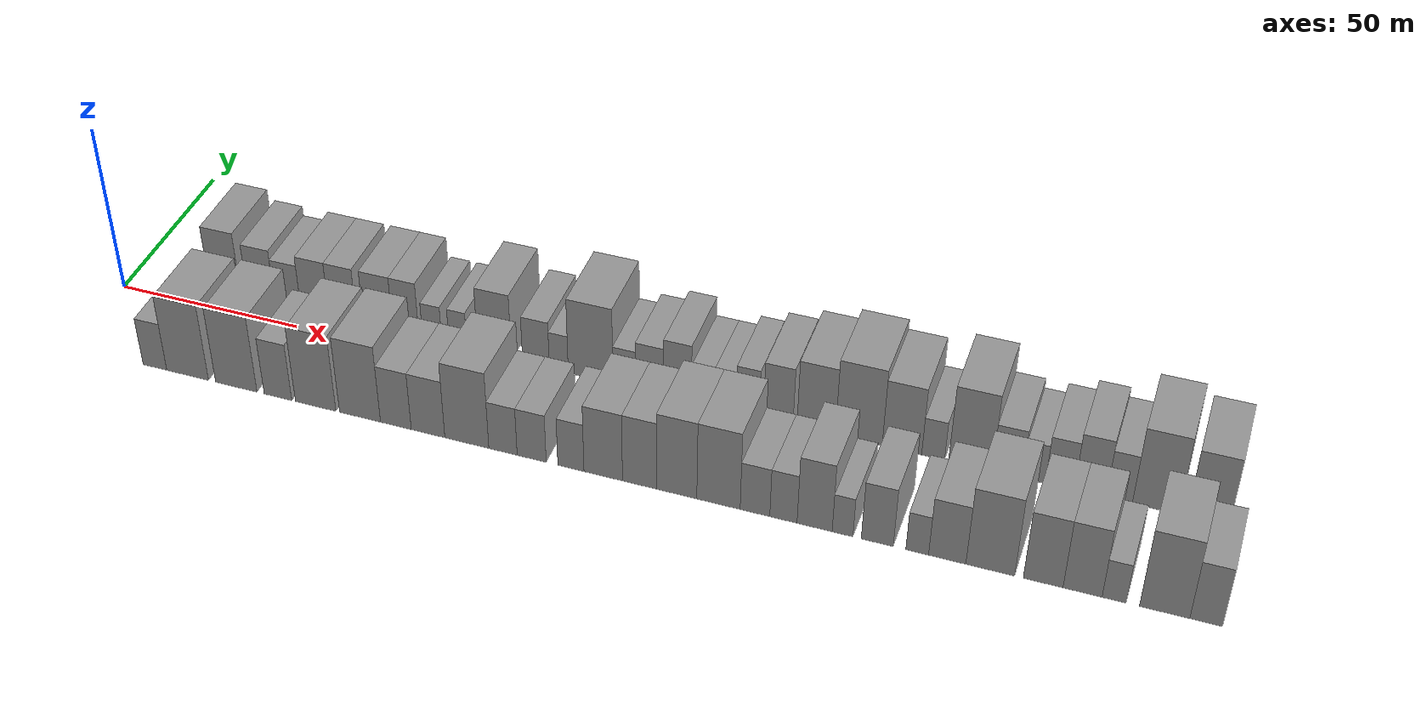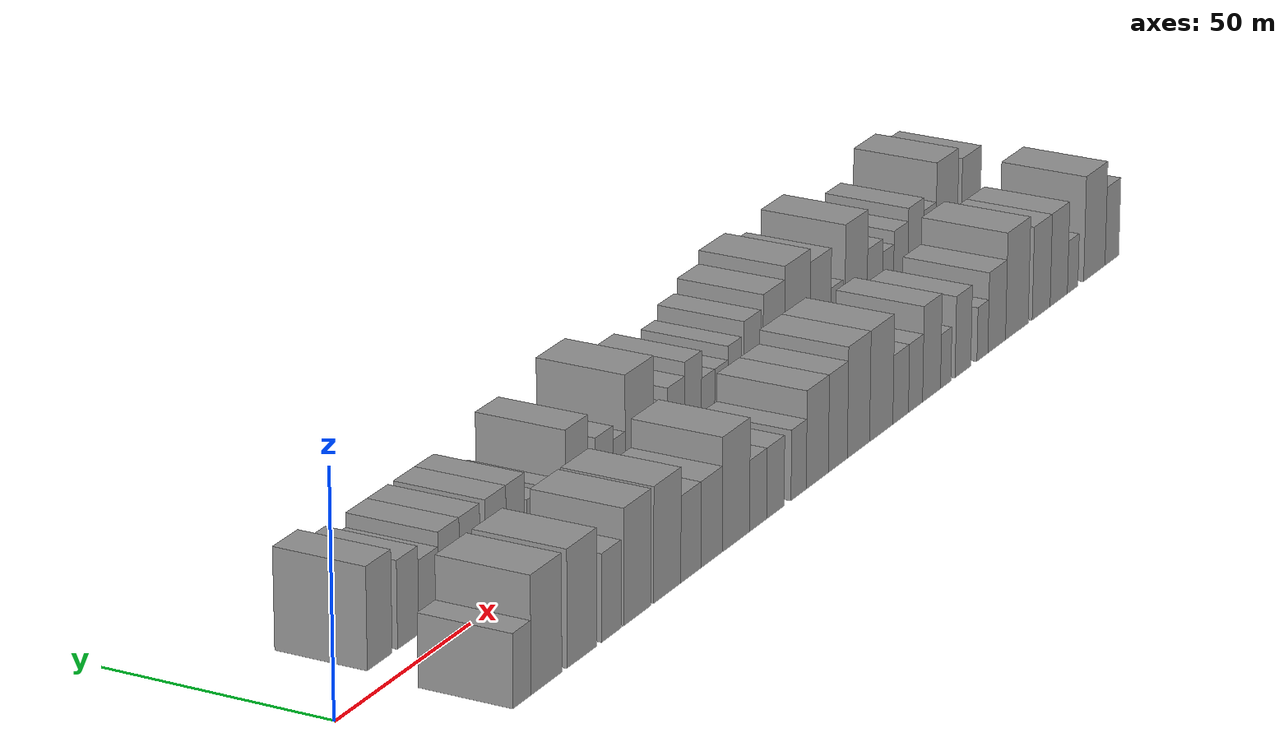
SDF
<sdf version="1.6">
 <world name="default">
  <scene>
   <sky><clouds><speed>12</speed></clouds></sky>
   <ambient>0.4 0.4 0.4 1</ambient>
   <background>0.7 0.7 0.7 1</background>
   <shadows>1</shadows>
  </scene>
  <gravity>0 0 -9.8066</gravity>
  <magnetic_field>6e-06 2.3e-05 -4.2e-05</magnetic_field>
  <physics default="0" name="default_physics" type="ode">
   <ode>
    <solver>
     <type>quick</type>
     <iters>10</iters>
     <sor>1.0</sor>
     <use_dynamic_moi_rescaling>0</use_dynamic_moi_rescaling>
    </solver>
    <constraints>
     <cfm>0</cfm>
     <erp>0.2</erp>
     <contact_max_correcting_vel>100</contact_max_correcting_vel>
     <contact_surface_layer>0.001</contact_surface_layer>
    </constraints>
   </ode>
   <max_step_size>0.004</max_step_size>
   <real_time_factor>1</real_time_factor>
   <real_time_update_rate>250</real_time_update_rate>
  </physics>
  <light name="sun" type="directional">
   <pose>0 0 10 0 0 0</pose>
   <diffuse>0.8 0.8 0.8 1</diffuse>
   <specular>0.2 0.2 0.2 1</specular>
   <attenuation>
    <range>1000</range>
    <constant>0.9</constant>
    <linear>0.01</linear>
    <quadratic>0.001</quadratic>
   </attenuation>
   <direction>-0.5 0.1 -0.9</direction>
  </light>
  <model name="building_1">
   <static>1</static>
   <pose>26.5547 16.0000 0 0.000000 0.000000 1.570796</pose>
   <link name="link">
    <pose>0 0 10.50 0 0 0</pose>
    <collision name="collision"><geometry><box><size>20.0000 9.1093 21.0000</size></box></geometry></collision>
    <visual name="visual">
     <cast_shadows>0</cast_shadows>
     <geometry><box><size>20.0000 9.1093 21.0000</size></box></geometry>
     <material>
      <script>
       <uri>model://grey_wall/materials/scripts</uri>
       <uri>model://grey_wall/materials/textures</uri>
       <name>vrc/grey_wall</name>
      </script>
     </material>
    </visual>
   </link>
  </model>
  <model name="building_2">
   <static>1</static>
   <pose>37.0509 16.0000 0 0.000000 0.000000 1.570796</pose>
   <link name="link">
    <pose>0 0 9.00 0 0 0</pose>
    <collision name="collision"><geometry><box><size>20.0000 7.8831 18.0000</size></box></geometry></collision>
    <visual name="visual">
     <cast_shadows>0</cast_shadows>
     <geometry><box><size>20.0000 7.8831 18.0000</size></box></geometry>
     <material>
      <script>
       <uri>model://grey_wall/materials/scripts</uri>
       <uri>model://grey_wall/materials/textures</uri>
       <name>vrc/grey_wall</name>
      </script>
     </material>
    </visual>
   </link>
  </model>
  <model name="building_3">
   <static>1</static>
   <pose>44.7225 16.0000 0 0.000000 0.000000 1.570796</pose>
   <link name="link">
    <pose>0 0 7.50 0 0 0</pose>
    <collision name="collision"><geometry><box><size>20.0000 7.4601 15.0000</size></box></geometry></collision>
    <visual name="visual">
     <cast_shadows>0</cast_shadows>
     <geometry><box><size>20.0000 7.4601 15.0000</size></box></geometry>
     <material>
      <script>
       <uri>model://grey_wall/materials/scripts</uri>
       <uri>model://grey_wall/materials/textures</uri>
       <name>vrc/grey_wall</name>
      </script>
     </material>
    </visual>
   </link>
  </model>
  <model name="building_4">
   <static>1</static>
   <pose>52.4734 16.0000 0 0.000000 0.000000 1.570796</pose>
   <link name="link">
    <pose>0 0 9.00 0 0 0</pose>
    <collision name="collision"><geometry><box><size>20.0000 8.0417 18.0000</size></box></geometry></collision>
    <visual name="visual">
     <cast_shadows>0</cast_shadows>
     <geometry><box><size>20.0000 8.0417 18.0000</size></box></geometry>
     <material>
      <script>
       <uri>model://grey_wall/materials/scripts</uri>
       <uri>model://grey_wall/materials/textures</uri>
       <name>vrc/grey_wall</name>
      </script>
     </material>
    </visual>
   </link>
  </model>
  <model name="building_5">
   <static>1</static>
   <pose>60.4137 16.0000 0 0.000000 0.000000 1.570796</pose>
   <link name="link">
    <pose>0 0 9.00 0 0 0</pose>
    <collision name="collision"><geometry><box><size>20.0000 7.8390 18.0000</size></box></geometry></collision>
    <visual name="visual">
     <cast_shadows>0</cast_shadows>
     <geometry><box><size>20.0000 7.8390 18.0000</size></box></geometry>
     <material>
      <script>
       <uri>model://grey_wall/materials/scripts</uri>
       <uri>model://grey_wall/materials/textures</uri>
       <name>vrc/grey_wall</name>
      </script>
     </material>
    </visual>
   </link>
  </model>
  <model name="building_6">
   <static>1</static>
   <pose>70.4229 16.0000 0 0.000000 0.000000 1.570796</pose>
   <link name="link">
    <pose>0 0 9.00 0 0 0</pose>
    <collision name="collision"><geometry><box><size>20.0000 8.1794 18.0000</size></box></geometry></collision>
    <visual name="visual">
     <cast_shadows>0</cast_shadows>
     <geometry><box><size>20.0000 8.1794 18.0000</size></box></geometry>
     <material>
      <script>
       <uri>model://grey_wall/materials/scripts</uri>
       <uri>model://grey_wall/materials/textures</uri>
       <name>vrc/grey_wall</name>
      </script>
     </material>
    </visual>
   </link>
  </model>
  <model name="building_7">
   <static>1</static>
   <pose>78.1544 16.0000 0 0.000000 0.000000 1.570796</pose>
   <link name="link">
    <pose>0 0 9.00 0 0 0</pose>
    <collision name="collision"><geometry><box><size>20.0000 7.2836 18.0000</size></box></geometry></collision>
    <visual name="visual">
     <cast_shadows>0</cast_shadows>
     <geometry><box><size>20.0000 7.2836 18.0000</size></box></geometry>
     <material>
      <script>
       <uri>model://grey_wall/materials/scripts</uri>
       <uri>model://grey_wall/materials/textures</uri>
       <name>vrc/grey_wall</name>
      </script>
     </material>
    </visual>
   </link>
  </model>
  <model name="building_8">
   <static>1</static>
   <pose>85.4545 16.0000 0 0.000000 0.000000 1.570796</pose>
   <link name="link">
    <pose>0 0 6.00 0 0 0</pose>
    <collision name="collision"><geometry><box><size>20.0000 5.3167 12.0000</size></box></geometry></collision>
    <visual name="visual">
     <cast_shadows>0</cast_shadows>
     <geometry><box><size>20.0000 5.3167 12.0000</size></box></geometry>
     <material>
      <script>
       <uri>model://grey_wall/materials/scripts</uri>
       <uri>model://grey_wall/materials/textures</uri>
       <name>vrc/grey_wall</name>
      </script>
     </material>
    </visual>
   </link>
  </model>
  <model name="building_9">
   <static>1</static>
   <pose>92.5778 16.0000 0 0.000000 0.000000 1.570796</pose>
   <link name="link">
    <pose>0 0 6.00 0 0 0</pose>
    <collision name="collision"><geometry><box><size>20.0000 4.9298 12.0000</size></box></geometry></collision>
    <visual name="visual">
     <cast_shadows>0</cast_shadows>
     <geometry><box><size>20.0000 4.9298 12.0000</size></box></geometry>
     <material>
      <script>
       <uri>model://grey_wall/materials/scripts</uri>
       <uri>model://grey_wall/materials/textures</uri>
       <name>vrc/grey_wall</name>
      </script>
     </material>
    </visual>
   </link>
  </model>
  <model name="building_10">
   <static>1</static>
   <pose>102.6408 16.0000 0 0.000000 0.000000 1.570796</pose>
   <link name="link">
    <pose>0 0 10.50 0 0 0</pose>
    <collision name="collision"><geometry><box><size>20.0000 9.1963 21.0000</size></box></geometry></collision>
    <visual name="visual">
     <cast_shadows>0</cast_shadows>
     <geometry><box><size>20.0000 9.1963 21.0000</size></box></geometry>
     <material>
      <script>
       <uri>model://grey_wall/materials/scripts</uri>
       <uri>model://grey_wall/materials/textures</uri>
       <name>vrc/grey_wall</name>
      </script>
     </material>
    </visual>
   </link>
  </model>
  <model name="building_11">
   <static>1</static>
   <pose>113.8537 16.0000 0 0.000000 0.000000 1.570796</pose>
   <link name="link">
    <pose>0 0 7.50 0 0 0</pose>
    <collision name="collision"><geometry><box><size>20.0000 7.2295 15.0000</size></box></geometry></collision>
    <visual name="visual">
     <cast_shadows>0</cast_shadows>
     <geometry><box><size>20.0000 7.2295 15.0000</size></box></geometry>
     <material>
      <script>
       <uri>model://grey_wall/materials/scripts</uri>
       <uri>model://grey_wall/materials/textures</uri>
       <name>vrc/grey_wall</name>
      </script>
     </material>
    </visual>
   </link>
  </model>
  <model name="building_12">
   <static>1</static>
   <pose>120.0079 16.0000 0 0.000000 0.000000 1.570796</pose>
   <link name="link">
    <pose>0 0 6.00 0 0 0</pose>
    <collision name="collision"><geometry><box><size>20.0000 5.0787 12.0000</size></box></geometry></collision>
    <visual name="visual">
     <cast_shadows>0</cast_shadows>
     <geometry><box><size>20.0000 5.0787 12.0000</size></box></geometry>
     <material>
      <script>
       <uri>model://grey_wall/materials/scripts</uri>
       <uri>model://grey_wall/materials/textures</uri>
       <name>vrc/grey_wall</name>
      </script>
     </material>
    </visual>
   </link>
  </model>
  <model name="building_13">
   <static>1</static>
   <pose>128.5151 16.0000 0 0.000000 0.000000 1.570796</pose>
   <link name="link">
    <pose>0 0 12.00 0 0 0</pose>
    <collision name="collision"><geometry><box><size>20.0000 11.9358 24.0000</size></box></geometry></collision>
    <visual name="visual">
     <cast_shadows>0</cast_shadows>
     <geometry><box><size>20.0000 11.9358 24.0000</size></box></geometry>
     <material>
      <script>
       <uri>model://grey_wall/materials/scripts</uri>
       <uri>model://grey_wall/materials/textures</uri>
       <name>vrc/grey_wall</name>
      </script>
     </material>
    </visual>
   </link>
  </model>
  <model name="building_14">
   <static>1</static>
   <pose>137.4655 16.0000 0 0.000000 0.000000 1.570796</pose>
   <link name="link">
    <pose>0 0 6.00 0 0 0</pose>
    <collision name="collision"><geometry><box><size>20.0000 5.9648 12.0000</size></box></geometry></collision>
    <visual name="visual">
     <cast_shadows>0</cast_shadows>
     <geometry><box><size>20.0000 5.9648 12.0000</size></box></geometry>
     <material>
      <script>
       <uri>model://grey_wall/materials/scripts</uri>
       <uri>model://grey_wall/materials/textures</uri>
       <name>vrc/grey_wall</name>
      </script>
     </material>
    </visual>
   </link>
  </model>
  <model name="building_15">
   <static>1</static>
   <pose>144.1425 16.0000 0 0.000000 0.000000 1.570796</pose>
   <link name="link">
    <pose>0 0 7.50 0 0 0</pose>
    <collision name="collision"><geometry><box><size>20.0000 7.3892 15.0000</size></box></geometry></collision>
    <visual name="visual">
     <cast_shadows>0</cast_shadows>
     <geometry><box><size>20.0000 7.3892 15.0000</size></box></geometry>
     <material>
      <script>
       <uri>model://grey_wall/materials/scripts</uri>
       <uri>model://grey_wall/materials/textures</uri>
       <name>vrc/grey_wall</name>
      </script>
     </material>
    </visual>
   </link>
  </model>
  <model name="building_16">
   <static>1</static>
   <pose>151.4685 16.0000 0 0.000000 0.000000 1.570796</pose>
   <link name="link">
    <pose>0 0 9.00 0 0 0</pose>
    <collision name="collision"><geometry><box><size>20.0000 7.2628 18.0000</size></box></geometry></collision>
    <visual name="visual">
     <cast_shadows>0</cast_shadows>
     <geometry><box><size>20.0000 7.2628 18.0000</size></box></geometry>
     <material>
      <script>
       <uri>model://grey_wall/materials/scripts</uri>
       <uri>model://grey_wall/materials/textures</uri>
       <name>vrc/grey_wall</name>
      </script>
     </material>
    </visual>
   </link>
  </model>
  <model name="building_17">
   <static>1</static>
   <pose>158.0082 16.0000 0 0.000000 0.000000 1.570796</pose>
   <link name="link">
    <pose>0 0 6.00 0 0 0</pose>
    <collision name="collision"><geometry><box><size>20.0000 5.8166 12.0000</size></box></geometry></collision>
    <visual name="visual">
     <cast_shadows>0</cast_shadows>
     <geometry><box><size>20.0000 5.8166 12.0000</size></box></geometry>
     <material>
      <script>
       <uri>model://grey_wall/materials/scripts</uri>
       <uri>model://grey_wall/materials/textures</uri>
       <name>vrc/grey_wall</name>
      </script>
     </material>
    </visual>
   </link>
  </model>
  <model name="building_18">
   <static>1</static>
   <pose>163.7879 16.0000 0 0.000000 0.000000 1.570796</pose>
   <link name="link">
    <pose>0 0 6.00 0 0 0</pose>
    <collision name="collision"><geometry><box><size>20.0000 5.7429 12.0000</size></box></geometry></collision>
    <visual name="visual">
     <cast_shadows>0</cast_shadows>
     <geometry><box><size>20.0000 5.7429 12.0000</size></box></geometry>
     <material>
      <script>
       <uri>model://grey_wall/materials/scripts</uri>
       <uri>model://grey_wall/materials/textures</uri>
       <name>vrc/grey_wall</name>
      </script>
     </material>
    </visual>
   </link>
  </model>
  <model name="building_19">
   <static>1</static>
   <pose>169.6911 16.0000 0 0.000000 0.000000 1.570796</pose>
   <link name="link">
    <pose>0 0 7.50 0 0 0</pose>
    <collision name="collision"><geometry><box><size>20.0000 6.0635 15.0000</size></box></geometry></collision>
    <visual name="visual">
     <cast_shadows>0</cast_shadows>
     <geometry><box><size>20.0000 6.0635 15.0000</size></box></geometry>
     <material>
      <script>
       <uri>model://grey_wall/materials/scripts</uri>
       <uri>model://grey_wall/materials/textures</uri>
       <name>vrc/grey_wall</name>
      </script>
     </material>
    </visual>
   </link>
  </model>
  <model name="building_20">
   <static>1</static>
   <pose>177.5209 16.0000 0 0.000000 0.000000 1.570796</pose>
   <link name="link">
    <pose>0 0 9.00 0 0 0</pose>
    <collision name="collision"><geometry><box><size>20.0000 7.5960 18.0000</size></box></geometry></collision>
    <visual name="visual">
     <cast_shadows>0</cast_shadows>
     <geometry><box><size>20.0000 7.5960 18.0000</size></box></geometry>
     <material>
      <script>
       <uri>model://grey_wall/materials/scripts</uri>
       <uri>model://grey_wall/materials/textures</uri>
       <name>vrc/grey_wall</name>
      </script>
     </material>
    </visual>
   </link>
  </model>
  <model name="building_21">
   <static>1</static>
   <pose>187.1836 16.0000 0 0.000000 0.000000 1.570796</pose>
   <link name="link">
    <pose>0 0 10.50 0 0 0</pose>
    <collision name="collision"><geometry><box><size>20.0000 9.7294 21.0000</size></box></geometry></collision>
    <visual name="visual">
     <cast_shadows>0</cast_shadows>
     <geometry><box><size>20.0000 9.7294 21.0000</size></box></geometry>
     <material>
      <script>
       <uri>model://grey_wall/materials/scripts</uri>
       <uri>model://grey_wall/materials/textures</uri>
       <name>vrc/grey_wall</name>
      </script>
     </material>
    </visual>
   </link>
  </model>
  <model name="building_22">
   <static>1</static>
   <pose>197.9205 16.0000 0 0.000000 0.000000 1.570796</pose>
   <link name="link">
    <pose>0 0 12.00 0 0 0</pose>
    <collision name="collision"><geometry><box><size>20.0000 11.7444 24.0000</size></box></geometry></collision>
    <visual name="visual">
     <cast_shadows>0</cast_shadows>
     <geometry><box><size>20.0000 11.7444 24.0000</size></box></geometry>
     <material>
      <script>
       <uri>model://grey_wall/materials/scripts</uri>
       <uri>model://grey_wall/materials/textures</uri>
       <name>vrc/grey_wall</name>
      </script>
     </material>
    </visual>
   </link>
  </model>
  <model name="building_23">
   <static>1</static>
   <pose>208.6838 16.0000 0 0.000000 0.000000 1.570796</pose>
   <link name="link">
    <pose>0 0 10.50 0 0 0</pose>
    <collision name="collision"><geometry><box><size>20.0000 9.7822 21.0000</size></box></geometry></collision>
    <visual name="visual">
     <cast_shadows>0</cast_shadows>
     <geometry><box><size>20.0000 9.7822 21.0000</size></box></geometry>
     <material>
      <script>
       <uri>model://grey_wall/materials/scripts</uri>
       <uri>model://grey_wall/materials/textures</uri>
       <name>vrc/grey_wall</name>
      </script>
     </material>
    </visual>
   </link>
  </model>
  <model name="building_24">
   <static>1</static>
   <pose>216.3989 16.0000 0 0.000000 0.000000 1.570796</pose>
   <link name="link">
    <pose>0 0 6.00 0 0 0</pose>
    <collision name="collision"><geometry><box><size>20.0000 5.6480 12.0000</size></box></geometry></collision>
    <visual name="visual">
     <cast_shadows>0</cast_shadows>
     <geometry><box><size>20.0000 5.6480 12.0000</size></box></geometry>
     <material>
      <script>
       <uri>model://grey_wall/materials/scripts</uri>
       <uri>model://grey_wall/materials/textures</uri>
       <name>vrc/grey_wall</name>
      </script>
     </material>
    </visual>
   </link>
  </model>
  <model name="building_25">
   <static>1</static>
   <pose>225.5383 16.0000 0 0.000000 0.000000 1.570796</pose>
   <link name="link">
    <pose>0 0 12.00 0 0 0</pose>
    <collision name="collision"><geometry><box><size>20.0000 10.6308 24.0000</size></box></geometry></collision>
    <visual name="visual">
     <cast_shadows>0</cast_shadows>
     <geometry><box><size>20.0000 10.6308 24.0000</size></box></geometry>
     <material>
      <script>
       <uri>model://grey_wall/materials/scripts</uri>
       <uri>model://grey_wall/materials/textures</uri>
       <name>vrc/grey_wall</name>
      </script>
     </material>
    </visual>
   </link>
  </model>
  <model name="building_26">
   <static>1</static>
   <pose>234.5276 16.0000 0 0.000000 0.000000 1.570796</pose>
   <link name="link">
    <pose>0 0 7.50 0 0 0</pose>
    <collision name="collision"><geometry><box><size>20.0000 7.3479 15.0000</size></box></geometry></collision>
    <visual name="visual">
     <cast_shadows>0</cast_shadows>
     <geometry><box><size>20.0000 7.3479 15.0000</size></box></geometry>
     <material>
      <script>
       <uri>model://grey_wall/materials/scripts</uri>
       <uri>model://grey_wall/materials/textures</uri>
       <name>vrc/grey_wall</name>
      </script>
     </material>
    </visual>
   </link>
  </model>
  <model name="building_27">
   <static>1</static>
   <pose>240.9351 16.0000 0 0.000000 0.000000 1.570796</pose>
   <link name="link">
    <pose>0 0 6.00 0 0 0</pose>
    <collision name="collision"><geometry><box><size>20.0000 5.4671 12.0000</size></box></geometry></collision>
    <visual name="visual">
     <cast_shadows>0</cast_shadows>
     <geometry><box><size>20.0000 5.4671 12.0000</size></box></geometry>
     <material>
      <script>
       <uri>model://grey_wall/materials/scripts</uri>
       <uri>model://grey_wall/materials/textures</uri>
       <name>vrc/grey_wall</name>
      </script>
     </material>
    </visual>
   </link>
  </model>
  <model name="building_28">
   <static>1</static>
   <pose>247.1524 16.0000 0 0.000000 0.000000 1.570796</pose>
   <link name="link">
    <pose>0 0 7.50 0 0 0</pose>
    <collision name="collision"><geometry><box><size>20.0000 6.9674 15.0000</size></box></geometry></collision>
    <visual name="visual">
     <cast_shadows>0</cast_shadows>
     <geometry><box><size>20.0000 6.9674 15.0000</size></box></geometry>
     <material>
      <script>
       <uri>model://grey_wall/materials/scripts</uri>
       <uri>model://grey_wall/materials/textures</uri>
       <name>vrc/grey_wall</name>
      </script>
     </material>
    </visual>
   </link>
  </model>
  <model name="building_29">
   <static>1</static>
   <pose>254.4423 16.0000 0 0.000000 0.000000 1.570796</pose>
   <link name="link">
    <pose>0 0 9.00 0 0 0</pose>
    <collision name="collision"><geometry><box><size>20.0000 7.6125 18.0000</size></box></geometry></collision>
    <visual name="visual">
     <cast_shadows>0</cast_shadows>
     <geometry><box><size>20.0000 7.6125 18.0000</size></box></geometry>
     <material>
      <script>
       <uri>model://grey_wall/materials/scripts</uri>
       <uri>model://grey_wall/materials/textures</uri>
       <name>vrc/grey_wall</name>
      </script>
     </material>
    </visual>
   </link>
  </model>
  <model name="building_30">
   <static>1</static>
   <pose>261.3294 16.0000 0 0.000000 0.000000 1.570796</pose>
   <link name="link">
    <pose>0 0 7.50 0 0 0</pose>
    <collision name="collision"><geometry><box><size>20.0000 6.1617 15.0000</size></box></geometry></collision>
    <visual name="visual">
     <cast_shadows>0</cast_shadows>
     <geometry><box><size>20.0000 6.1617 15.0000</size></box></geometry>
     <material>
      <script>
       <uri>model://grey_wall/materials/scripts</uri>
       <uri>model://grey_wall/materials/textures</uri>
       <name>vrc/grey_wall</name>
      </script>
     </material>
    </visual>
   </link>
  </model>
  <model name="building_31">
   <static>1</static>
   <pose>269.8403 16.0000 0 0.000000 0.000000 1.570796</pose>
   <link name="link">
    <pose>0 0 12.00 0 0 0</pose>
    <collision name="collision"><geometry><box><size>20.0000 10.8602 24.0000</size></box></geometry></collision>
    <visual name="visual">
     <cast_shadows>0</cast_shadows>
     <geometry><box><size>20.0000 10.8602 24.0000</size></box></geometry>
     <material>
      <script>
       <uri>model://grey_wall/materials/scripts</uri>
       <uri>model://grey_wall/materials/textures</uri>
       <name>vrc/grey_wall</name>
      </script>
     </material>
    </visual>
   </link>
  </model>
  <model name="building_32">
   <static>1</static>
   <pose>282.1423 16.0000 0 0.000000 0.000000 1.570796</pose>
   <link name="link">
    <pose>0 0 10.50 0 0 0</pose>
    <collision name="collision"><geometry><box><size>20.0000 9.7439 21.0000</size></box></geometry></collision>
    <visual name="visual">
     <cast_shadows>0</cast_shadows>
     <geometry><box><size>20.0000 9.7439 21.0000</size></box></geometry>
     <material>
      <script>
       <uri>model://grey_wall/materials/scripts</uri>
       <uri>model://grey_wall/materials/textures</uri>
       <name>vrc/grey_wall</name>
      </script>
     </material>
    </visual>
   </link>
  </model>
  <model name="building_33">
   <static>1</static>
   <pose>23.3494 -16.0000 0 0.000000 0.000000 1.570796</pose>
   <link name="link">
    <pose>0 0 7.50 0 0 0</pose>
    <collision name="collision"><geometry><box><size>20.0000 6.6989 15.0000</size></box></geometry></collision>
    <visual name="visual">
     <cast_shadows>0</cast_shadows>
     <geometry><box><size>20.0000 6.6989 15.0000</size></box></geometry>
     <material>
      <script>
       <uri>model://grey_wall/materials/scripts</uri>
       <uri>model://grey_wall/materials/textures</uri>
       <name>vrc/grey_wall</name>
      </script>
     </material>
    </visual>
   </link>
  </model>
  <model name="building_34">
   <static>1</static>
   <pose>32.5683 -16.0000 0 0.000000 0.000000 1.570796</pose>
   <link name="link">
    <pose>0 0 12.00 0 0 0</pose>
    <collision name="collision"><geometry><box><size>20.0000 11.7388 24.0000</size></box></geometry></collision>
    <visual name="visual">
     <cast_shadows>0</cast_shadows>
     <geometry><box><size>20.0000 11.7388 24.0000</size></box></geometry>
     <material>
      <script>
       <uri>model://grey_wall/materials/scripts</uri>
       <uri>model://grey_wall/materials/textures</uri>
       <name>vrc/grey_wall</name>
      </script>
     </material>
    </visual>
   </link>
  </model>
  <model name="building_35">
   <static>1</static>
   <pose>46.1824 -16.0000 0 0.000000 0.000000 1.570796</pose>
   <link name="link">
    <pose>0 0 12.00 0 0 0</pose>
    <collision name="collision"><geometry><box><size>20.0000 11.4893 24.0000</size></box></geometry></collision>
    <visual name="visual">
     <cast_shadows>0</cast_shadows>
     <geometry><box><size>20.0000 11.4893 24.0000</size></box></geometry>
     <material>
      <script>
       <uri>model://grey_wall/materials/scripts</uri>
       <uri>model://grey_wall/materials/textures</uri>
       <name>vrc/grey_wall</name>
      </script>
     </material>
    </visual>
   </link>
  </model>
  <model name="building_36">
   <static>1</static>
   <pose>57.7215 -16.0000 0 0.000000 0.000000 1.570796</pose>
   <link name="link">
    <pose>0 0 9.00 0 0 0</pose>
    <collision name="collision"><geometry><box><size>20.0000 7.5889 18.0000</size></box></geometry></collision>
    <visual name="visual">
     <cast_shadows>0</cast_shadows>
     <geometry><box><size>20.0000 7.5889 18.0000</size></box></geometry>
     <material>
      <script>
       <uri>model://grey_wall/materials/scripts</uri>
       <uri>model://grey_wall/materials/textures</uri>
       <name>vrc/grey_wall</name>
      </script>
     </material>
    </visual>
   </link>
  </model>
  <model name="building_37">
   <static>1</static>
   <pose>68.0185 -16.0000 0 0.000000 0.000000 1.570796</pose>
   <link name="link">
    <pose>0 0 12.00 0 0 0</pose>
    <collision name="collision"><geometry><box><size>20.0000 11.0053 24.0000</size></box></geometry></collision>
    <visual name="visual">
     <cast_shadows>0</cast_shadows>
     <geometry><box><size>20.0000 11.0053 24.0000</size></box></geometry>
     <material>
      <script>
       <uri>model://grey_wall/materials/scripts</uri>
       <uri>model://grey_wall/materials/textures</uri>
       <name>vrc/grey_wall</name>
      </script>
     </material>
    </visual>
   </link>
  </model>
  <model name="building_38">
   <static>1</static>
   <pose>80.0309 -16.0000 0 0.000000 0.000000 1.570796</pose>
   <link name="link">
    <pose>0 0 12.00 0 0 0</pose>
    <collision name="collision"><geometry><box><size>20.0000 11.0194 24.0000</size></box></geometry></collision>
    <visual name="visual">
     <cast_shadows>0</cast_shadows>
     <geometry><box><size>20.0000 11.0194 24.0000</size></box></geometry>
     <material>
      <script>
       <uri>model://grey_wall/materials/scripts</uri>
       <uri>model://grey_wall/materials/textures</uri>
       <name>vrc/grey_wall</name>
      </script>
     </material>
    </visual>
   </link>
  </model>
  <model name="building_39">
   <static>1</static>
   <pose>89.6526 -16.0000 0 0.000000 0.000000 1.570796</pose>
   <link name="link">
    <pose>0 0 9.00 0 0 0</pose>
    <collision name="collision"><geometry><box><size>20.0000 8.2241 18.0000</size></box></geometry></collision>
    <visual name="visual">
     <cast_shadows>0</cast_shadows>
     <geometry><box><size>20.0000 8.2241 18.0000</size></box></geometry>
     <material>
      <script>
       <uri>model://grey_wall/materials/scripts</uri>
       <uri>model://grey_wall/materials/textures</uri>
       <name>vrc/grey_wall</name>
      </script>
     </material>
    </visual>
   </link>
  </model>
  <model name="building_40">
   <static>1</static>
   <pose>98.2155 -16.0000 0 0.000000 0.000000 1.570796</pose>
   <link name="link">
    <pose>0 0 9.00 0 0 0</pose>
    <collision name="collision"><geometry><box><size>20.0000 8.9016 18.0000</size></box></geometry></collision>
    <visual name="visual">
     <cast_shadows>0</cast_shadows>
     <geometry><box><size>20.0000 8.9016 18.0000</size></box></geometry>
     <material>
      <script>
       <uri>model://grey_wall/materials/scripts</uri>
       <uri>model://grey_wall/materials/textures</uri>
       <name>vrc/grey_wall</name>
      </script>
     </material>
    </visual>
   </link>
  </model>
  <model name="building_41">
   <static>1</static>
   <pose>108.4386 -16.0000 0 0.000000 0.000000 1.570796</pose>
   <link name="link">
    <pose>0 0 12.00 0 0 0</pose>
    <collision name="collision"><geometry><box><size>20.0000 11.5446 24.0000</size></box></geometry></collision>
    <visual name="visual">
     <cast_shadows>0</cast_shadows>
     <geometry><box><size>20.0000 11.5446 24.0000</size></box></geometry>
     <material>
      <script>
       <uri>model://grey_wall/materials/scripts</uri>
       <uri>model://grey_wall/materials/textures</uri>
       <name>vrc/grey_wall</name>
      </script>
     </material>
    </visual>
   </link>
  </model>
  <model name="building_42">
   <static>1</static>
   <pose>117.8920 -16.0000 0 0.000000 0.000000 1.570796</pose>
   <link name="link">
    <pose>0 0 7.50 0 0 0</pose>
    <collision name="collision"><geometry><box><size>20.0000 7.3621 15.0000</size></box></geometry></collision>
    <visual name="visual">
     <cast_shadows>0</cast_shadows>
     <geometry><box><size>20.0000 7.3621 15.0000</size></box></geometry>
     <material>
      <script>
       <uri>model://grey_wall/materials/scripts</uri>
       <uri>model://grey_wall/materials/textures</uri>
       <name>vrc/grey_wall</name>
      </script>
     </material>
    </visual>
   </link>
  </model>
  <model name="building_43">
   <static>1</static>
   <pose>125.3190 -16.0000 0 0.000000 0.000000 1.570796</pose>
   <link name="link">
    <pose>0 0 7.50 0 0 0</pose>
    <collision name="collision"><geometry><box><size>20.0000 7.4920 15.0000</size></box></geometry></collision>
    <visual name="visual">
     <cast_shadows>0</cast_shadows>
     <geometry><box><size>20.0000 7.4920 15.0000</size></box></geometry>
     <material>
      <script>
       <uri>model://grey_wall/materials/scripts</uri>
       <uri>model://grey_wall/materials/textures</uri>
       <name>vrc/grey_wall</name>
      </script>
     </material>
    </visual>
   </link>
  </model>
  <model name="building_44">
   <static>1</static>
   <pose>135.4020 -16.0000 0 0.000000 0.000000 1.570796</pose>
   <link name="link">
    <pose>0 0 7.50 0 0 0</pose>
    <collision name="collision"><geometry><box><size>20.0000 6.6740 15.0000</size></box></geometry></collision>
    <visual name="visual">
     <cast_shadows>0</cast_shadows>
     <geometry><box><size>20.0000 6.6740 15.0000</size></box></geometry>
     <material>
      <script>
       <uri>model://grey_wall/materials/scripts</uri>
       <uri>model://grey_wall/materials/textures</uri>
       <name>vrc/grey_wall</name>
      </script>
     </material>
    </visual>
   </link>
  </model>
  <model name="building_45">
   <static>1</static>
   <pose>143.6251 -16.0000 0 0.000000 0.000000 1.570796</pose>
   <link name="link">
    <pose>0 0 10.50 0 0 0</pose>
    <collision name="collision"><geometry><box><size>20.0000 9.7723 21.0000</size></box></geometry></collision>
    <visual name="visual">
     <cast_shadows>0</cast_shadows>
     <geometry><box><size>20.0000 9.7723 21.0000</size></box></geometry>
     <material>
      <script>
       <uri>model://grey_wall/materials/scripts</uri>
       <uri>model://grey_wall/materials/textures</uri>
       <name>vrc/grey_wall</name>
      </script>
     </material>
    </visual>
   </link>
  </model>
  <model name="building_46">
   <static>1</static>
   <pose>152.7676 -16.0000 0 0.000000 0.000000 1.570796</pose>
   <link name="link">
    <pose>0 0 10.50 0 0 0</pose>
    <collision name="collision"><geometry><box><size>20.0000 8.5126 21.0000</size></box></geometry></collision>
    <visual name="visual">
     <cast_shadows>0</cast_shadows>
     <geometry><box><size>20.0000 8.5126 21.0000</size></box></geometry>
     <material>
      <script>
       <uri>model://grey_wall/materials/scripts</uri>
       <uri>model://grey_wall/materials/textures</uri>
       <name>vrc/grey_wall</name>
      </script>
     </material>
    </visual>
   </link>
  </model>
  <model name="building_47">
   <static>1</static>
   <pose>162.0728 -16.0000 0 0.000000 0.000000 1.570796</pose>
   <link name="link">
    <pose>0 0 12.00 0 0 0</pose>
    <collision name="collision"><geometry><box><size>20.0000 10.0980 24.0000</size></box></geometry></collision>
    <visual name="visual">
     <cast_shadows>0</cast_shadows>
     <geometry><box><size>20.0000 10.0980 24.0000</size></box></geometry>
     <material>
      <script>
       <uri>model://grey_wall/materials/scripts</uri>
       <uri>model://grey_wall/materials/textures</uri>
       <name>vrc/grey_wall</name>
      </script>
     </material>
    </visual>
   </link>
  </model>
  <model name="building_48">
   <static>1</static>
   <pose>172.4769 -16.0000 0 0.000000 0.000000 1.570796</pose>
   <link name="link">
    <pose>0 0 12.00 0 0 0</pose>
    <collision name="collision"><geometry><box><size>20.0000 10.7101 24.0000</size></box></geometry></collision>
    <visual name="visual">
     <cast_shadows>0</cast_shadows>
     <geometry><box><size>20.0000 10.7101 24.0000</size></box></geometry>
     <material>
      <script>
       <uri>model://grey_wall/materials/scripts</uri>
       <uri>model://grey_wall/materials/textures</uri>
       <name>vrc/grey_wall</name>
      </script>
     </material>
    </visual>
   </link>
  </model>
  <model name="building_49">
   <static>1</static>
   <pose>181.4621 -16.0000 0 0.000000 0.000000 1.570796</pose>
   <link name="link">
    <pose>0 0 7.50 0 0 0</pose>
    <collision name="collision"><geometry><box><size>20.0000 7.2603 15.0000</size></box></geometry></collision>
    <visual name="visual">
     <cast_shadows>0</cast_shadows>
     <geometry><box><size>20.0000 7.2603 15.0000</size></box></geometry>
     <material>
      <script>
       <uri>model://grey_wall/materials/scripts</uri>
       <uri>model://grey_wall/materials/textures</uri>
       <name>vrc/grey_wall</name>
      </script>
     </material>
    </visual>
   </link>
  </model>
  <model name="building_50">
   <static>1</static>
   <pose>188.4011 -16.0000 0 0.000000 0.000000 1.570796</pose>
   <link name="link">
    <pose>0 0 7.50 0 0 0</pose>
    <collision name="collision"><geometry><box><size>20.0000 6.6177 15.0000</size></box></geometry></collision>
    <visual name="visual">
     <cast_shadows>0</cast_shadows>
     <geometry><box><size>20.0000 6.6177 15.0000</size></box></geometry>
     <material>
      <script>
       <uri>model://grey_wall/materials/scripts</uri>
       <uri>model://grey_wall/materials/textures</uri>
       <name>vrc/grey_wall</name>
      </script>
     </material>
    </visual>
   </link>
  </model>
  <model name="building_51">
   <static>1</static>
   <pose>195.9518 -16.0000 0 0.000000 0.000000 1.570796</pose>
   <link name="link">
    <pose>0 0 10.50 0 0 0</pose>
    <collision name="collision"><geometry><box><size>20.0000 8.4837 21.0000</size></box></geometry></collision>
    <visual name="visual">
     <cast_shadows>0</cast_shadows>
     <geometry><box><size>20.0000 8.4837 21.0000</size></box></geometry>
     <material>
      <script>
       <uri>model://grey_wall/materials/scripts</uri>
       <uri>model://grey_wall/materials/textures</uri>
       <name>vrc/grey_wall</name>
      </script>
     </material>
    </visual>
   </link>
  </model>
  <model name="building_52">
   <static>1</static>
   <pose>202.6838 -16.0000 0 0.000000 0.000000 1.570796</pose>
   <link name="link">
    <pose>0 0 6.00 0 0 0</pose>
    <collision name="collision"><geometry><box><size>20.0000 4.9804 12.0000</size></box></geometry></collision>
    <visual name="visual">
     <cast_shadows>0</cast_shadows>
     <geometry><box><size>20.0000 4.9804 12.0000</size></box></geometry>
     <material>
      <script>
       <uri>model://grey_wall/materials/scripts</uri>
       <uri>model://grey_wall/materials/textures</uri>
       <name>vrc/grey_wall</name>
      </script>
     </material>
    </visual>
   </link>
  </model>
  <model name="building_53">
   <static>1</static>
   <pose>210.9725 -16.0000 0 0.000000 0.000000 1.570796</pose>
   <link name="link">
    <pose>0 0 9.00 0 0 0</pose>
    <collision name="collision"><geometry><box><size>20.0000 7.5971 18.0000</size></box></geometry></collision>
    <visual name="visual">
     <cast_shadows>0</cast_shadows>
     <geometry><box><size>20.0000 7.5971 18.0000</size></box></geometry>
     <material>
      <script>
       <uri>model://grey_wall/materials/scripts</uri>
       <uri>model://grey_wall/materials/textures</uri>
       <name>vrc/grey_wall</name>
      </script>
     </material>
    </visual>
   </link>
  </model>
  <model name="building_54">
   <static>1</static>
   <pose>220.4378 -16.0000 0 0.000000 0.000000 1.570796</pose>
   <link name="link">
    <pose>0 0 6.00 0 0 0</pose>
    <collision name="collision"><geometry><box><size>20.0000 5.3335 12.0000</size></box></geometry></collision>
    <visual name="visual">
     <cast_shadows>0</cast_shadows>
     <geometry><box><size>20.0000 5.3335 12.0000</size></box></geometry>
     <material>
      <script>
       <uri>model://grey_wall/materials/scripts</uri>
       <uri>model://grey_wall/materials/textures</uri>
       <name>vrc/grey_wall</name>
      </script>
     </material>
    </visual>
   </link>
  </model>
  <model name="building_55">
   <static>1</static>
   <pose>227.4697 -16.0000 0 0.000000 0.000000 1.570796</pose>
   <link name="link">
    <pose>0 0 9.00 0 0 0</pose>
    <collision name="collision"><geometry><box><size>20.0000 8.7302 18.0000</size></box></geometry></collision>
    <visual name="visual">
     <cast_shadows>0</cast_shadows>
     <geometry><box><size>20.0000 8.7302 18.0000</size></box></geometry>
     <material>
      <script>
       <uri>model://grey_wall/materials/scripts</uri>
       <uri>model://grey_wall/materials/textures</uri>
       <name>vrc/grey_wall</name>
      </script>
     </material>
    </visual>
   </link>
  </model>
  <model name="building_56">
   <static>1</static>
   <pose>237.4937 -16.0000 0 0.000000 0.000000 1.570796</pose>
   <link name="link">
    <pose>0 0 12.00 0 0 0</pose>
    <collision name="collision"><geometry><box><size>20.0000 11.3179 24.0000</size></box></geometry></collision>
    <visual name="visual">
     <cast_shadows>0</cast_shadows>
     <geometry><box><size>20.0000 11.3179 24.0000</size></box></geometry>
     <material>
      <script>
       <uri>model://grey_wall/materials/scripts</uri>
       <uri>model://grey_wall/materials/textures</uri>
       <name>vrc/grey_wall</name>
      </script>
     </material>
    </visual>
   </link>
  </model>
  <model name="building_57">
   <static>1</static>
   <pose>249.6970 -16.0000 0 0.000000 0.000000 1.570796</pose>
   <link name="link">
    <pose>0 0 10.50 0 0 0</pose>
    <collision name="collision"><geometry><box><size>20.0000 9.0886 21.0000</size></box></geometry></collision>
    <visual name="visual">
     <cast_shadows>0</cast_shadows>
     <geometry><box><size>20.0000 9.0886 21.0000</size></box></geometry>
     <material>
      <script>
       <uri>model://grey_wall/materials/scripts</uri>
       <uri>model://grey_wall/materials/textures</uri>
       <name>vrc/grey_wall</name>
      </script>
     </material>
    </visual>
   </link>
  </model>
  <model name="building_58">
   <static>1</static>
   <pose>258.6728 -16.0000 0 0.000000 0.000000 1.570796</pose>
   <link name="link">
    <pose>0 0 10.50 0 0 0</pose>
    <collision name="collision"><geometry><box><size>20.0000 8.8630 21.0000</size></box></geometry></collision>
    <visual name="visual">
     <cast_shadows>0</cast_shadows>
     <geometry><box><size>20.0000 8.8630 21.0000</size></box></geometry>
     <material>
      <script>
       <uri>model://grey_wall/materials/scripts</uri>
       <uri>model://grey_wall/materials/textures</uri>
       <name>vrc/grey_wall</name>
      </script>
     </material>
    </visual>
   </link>
  </model>
  <model name="building_59">
   <static>1</static>
   <pose>265.8117 -16.0000 0 0.000000 0.000000 1.570796</pose>
   <link name="link">
    <pose>0 0 6.00 0 0 0</pose>
    <collision name="collision"><geometry><box><size>20.0000 5.4147 12.0000</size></box></geometry></collision>
    <visual name="visual">
     <cast_shadows>0</cast_shadows>
     <geometry><box><size>20.0000 5.4147 12.0000</size></box></geometry>
     <material>
      <script>
       <uri>model://grey_wall/materials/scripts</uri>
       <uri>model://grey_wall/materials/textures</uri>
       <name>vrc/grey_wall</name>
      </script>
     </material>
    </visual>
   </link>
  </model>
  <model name="building_60">
   <static>1</static>
   <pose>277.1212 -16.0000 0 0.000000 0.000000 1.570796</pose>
   <link name="link">
    <pose>0 0 12.00 0 0 0</pose>
    <collision name="collision"><geometry><box><size>20.0000 11.2043 24.0000</size></box></geometry></collision>
    <visual name="visual">
     <cast_shadows>0</cast_shadows>
     <geometry><box><size>20.0000 11.2043 24.0000</size></box></geometry>
     <material>
      <script>
       <uri>model://grey_wall/materials/scripts</uri>
       <uri>model://grey_wall/materials/textures</uri>
       <name>vrc/grey_wall</name>
      </script>
     </material>
    </visual>
   </link>
  </model>
  <model name="building_61">
   <static>1</static>
   <pose>286.3606 -16.0000 0 0.000000 0.000000 1.570796</pose>
   <link name="link">
    <pose>0 0 9.00 0 0 0</pose>
    <collision name="collision"><geometry><box><size>20.0000 7.2746 18.0000</size></box></geometry></collision>
    <visual name="visual">
     <cast_shadows>0</cast_shadows>
     <geometry><box><size>20.0000 7.2746 18.0000</size></box></geometry>
     <material>
      <script>
       <uri>model://grey_wall/materials/scripts</uri>
       <uri>model://grey_wall/materials/textures</uri>
       <name>vrc/grey_wall</name>
      </script>
     </material>
    </visual>
   </link>
  </model>
 </world>
</sdf>
